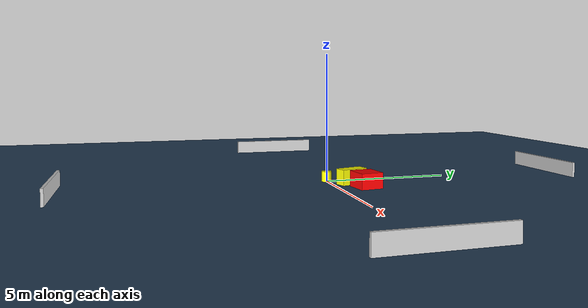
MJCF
<?xml version="1.0" ?>
<mujoco model="generated_environment">
  <option timestep="0.01" integrator="RK4" cone="elliptic"/>
  <default>
    <geom density="1"/>
  </default>
  <asset>
    <texture builtin="gradient" height="3072" name="skybox" rgb1="0.3 0.5 0.7" rgb2="0 0 0" type="skybox" width="512"/>
    <texture builtin="checker" height="300" name="groundplane" rgb1="0.2 0.3 0.4" rgb2="0.1 0.2 0.3" type="2d" width="300"/>
    <material name="groundplane" reflectance="0.2" texrepeat="5 5" texture="groundplane"/>
  </asset>
  <worldbody>
    <light dir="0 0 -1" directional="true" pos="0 0 1.5"/>
    <geom condim="3" friction="0.5 0.005 0.001" material="groundplane" name="floor" pos="0 0 0" size="0 0 0.05" type="plane"/>
    <body name="walls">
      <geom name="wall_1" condim="4" pos="-10.0 0.0 0.3" rgba="0.800000011920929 0.800000011920929 0.800000011920929 1.0" size="0.05 2.0 0.3" type="box"/>
      <geom name="wall_2" condim="4" pos="10.0 0.0 0.3" rgba="0.800000011920929 0.800000011920929 0.800000011920929 1.0" size="0.05 2.0 0.3" type="box"/>
      <geom name="wall_3" condim="4" pos="0.0 -10.0 0.3" rgba="0.800000011920929 0.800000011920929 0.800000011920929 1.0" size="2.0 0.05 0.3" type="box"/>
      <geom name="wall_4" condim="4" pos="0.0 10.0 0.3" rgba="0.800000011920929 0.800000011920929 0.800000011920929 1.0" size="2.0 0.05 0.3" type="box"/>
    </body>
    <body name="robot">
      <joint name="joint_x" type="slide" pos="0 0 0" axis="1 0 0"/>
      <joint name="joint_y" type="slide" pos="0 0 0" axis="0 1 0"/>
      <geom name="robot" type="cylinder" pos="0.0 0.0 0.2" size="0.2 0.2 0.0" mass="5.0" friction="1.0 0.005 0.0001" condim="4" rgba="1.0 1.0 0.0 1.0"/>
    </body>
    <body name="obstacle_1_movable">
      <geom name="obstacle_1_movable" condim="4" pos="0.8144277319037119 0.7606617884608615 0.3" euler="0 0 106.61961219580381" friction="0.0 0.005 0.001" rgba="1.0 1.0 0.0 1.0" size="0.5449400232187989 0.2444613498608804 0.3" type="box" mass="0.1"/>
      <joint type="free"/>
    </body>
    <body name="obstacle_2_static">
      <geom name="obstacle_2_static" condim="4" pos="1.7052340950925455 1.0288818140635143 0.3" euler="0 0 277.26206362232983" friction="0.0 0.005 0.001" rgba="1.0 0.0 0.0 1.0" size="0.43550821603530365 0.4895282140621205 0.3" type="box"/>
    </body>
  </worldbody>
  <actuator>
    <motor name="actuator_x" joint="joint_x" gear="1" ctrlrange="-1 1"/>
    <motor name="actuator_y" joint="joint_y" gear="1" ctrlrange="-1 1"/>
  </actuator>
</mujoco>
